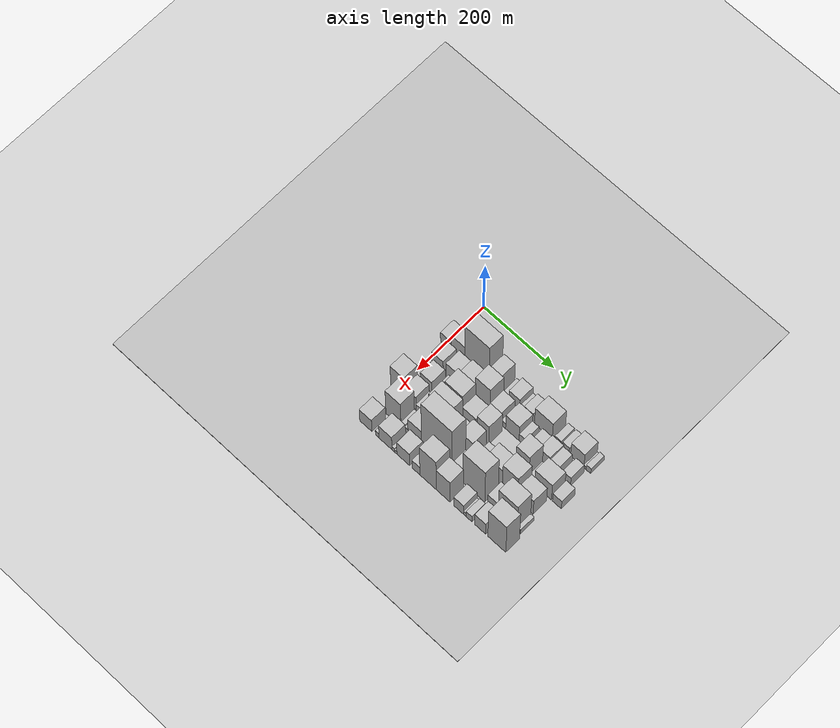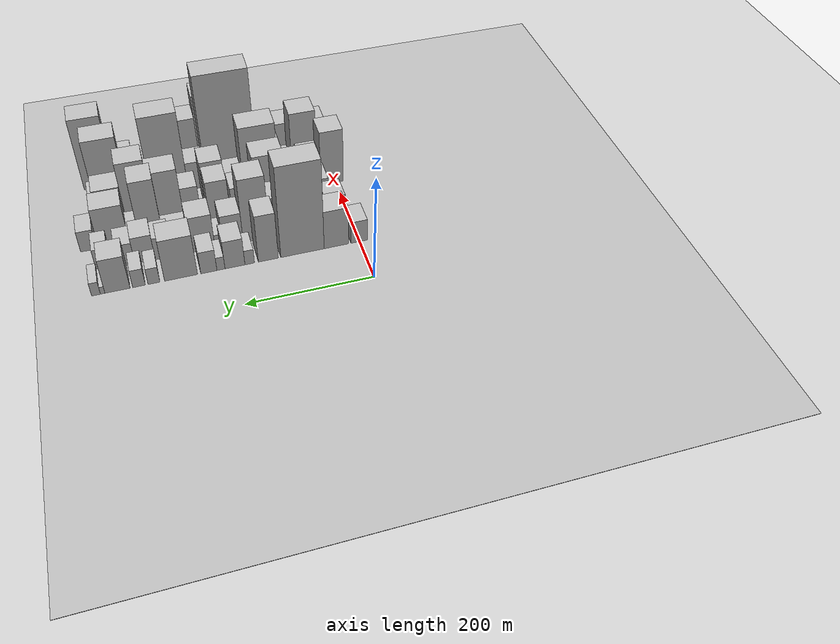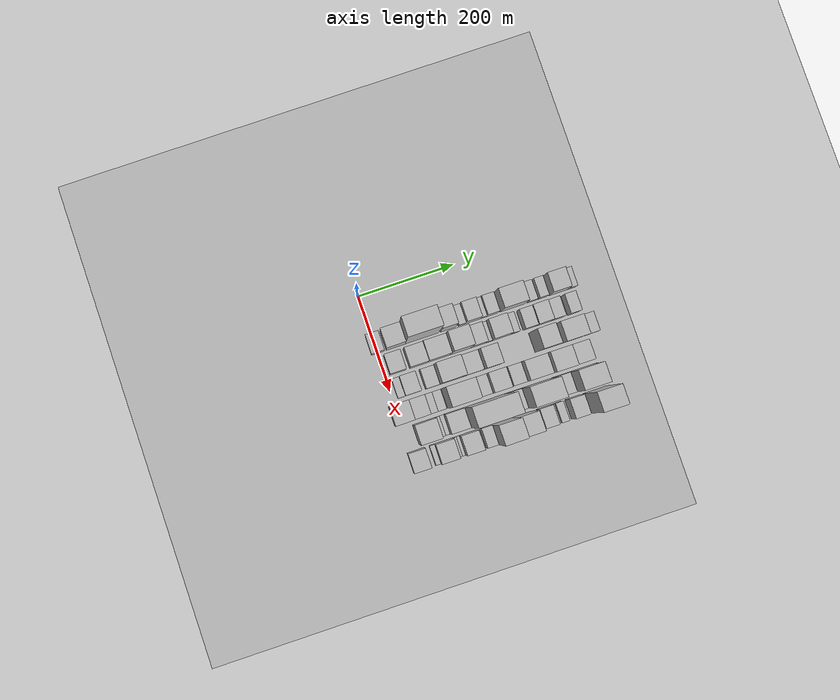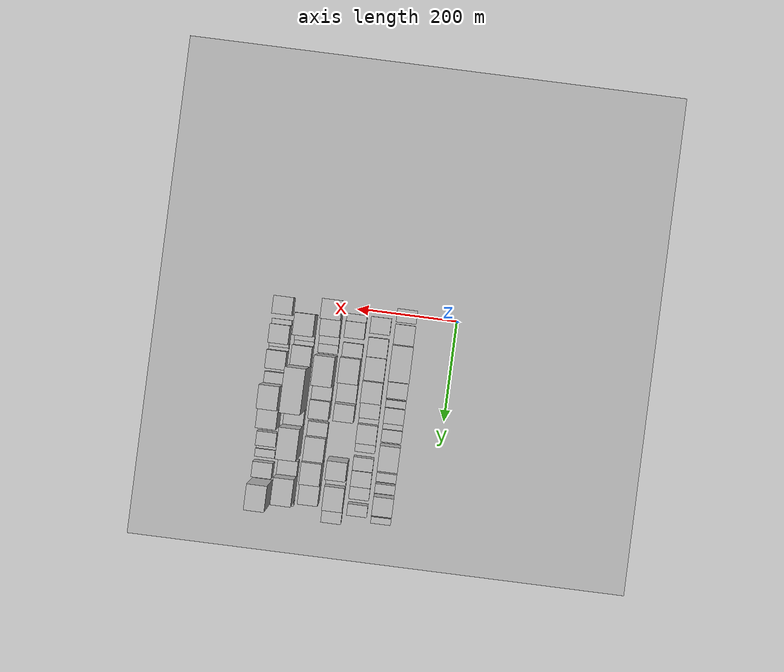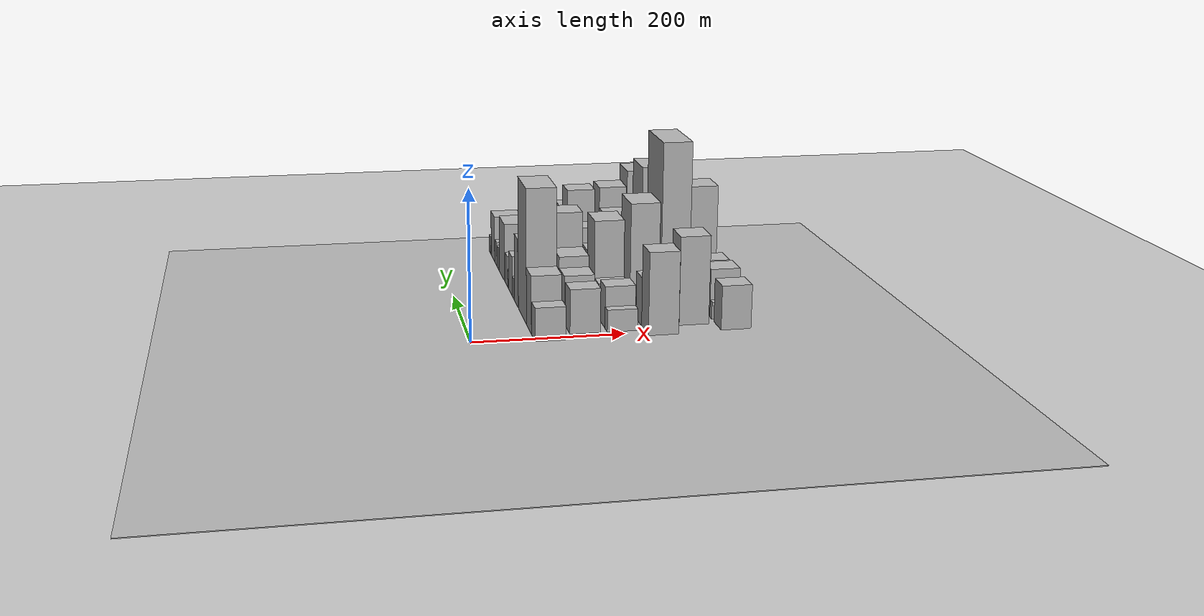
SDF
<sdf version="1.6">
 <world name="default">
  <include><name>ground_plane_1</name><uri>model://HANNAS_ground_plane</uri></include>
  <include>
   <name>ground_plane_2</name>
   <uri>model://HANNAS_ground_plane</uri>
   <pose>100 0 0  0 0 0</pose>
  </include>
  <model name="building_24">
   <static>1</static>
   <pose>100.0000 1.3335 0 0.000000 0.000000 0.000000</pose>
   <link name="link">
    <pose>0 0 22.50 0 0 0</pose>
    <collision name="collision"><geometry><box><size>40.0000 26.7026 45.0000</size></box></geometry></collision>
    <visual name="visual">
     <cast_shadows>0</cast_shadows>
     <geometry><box><size>40.0000 26.7026 45.0000</size></box></geometry>
     <material>
      <script>
       <uri>model://HANNAS_wall/materials/scripts</uri>
       <uri>model://HANNAS_wall/materials/textures</uri>
       <name>vrc/HANNAS_wall</name>
      </script>
     </material>
    </visual>
   </link>
  </model>
  <model name="building_25">
   <static>1</static>
   <pose>100.0000 38.5703 0 0.000000 0.000000 0.000000</pose>
   <link name="link">
    <pose>0 0 39.00 0 0 0</pose>
    <collision name="collision"><geometry><box><size>40.0000 39.7708 78.0000</size></box></geometry></collision>
    <visual name="visual">
     <cast_shadows>0</cast_shadows>
     <geometry><box><size>40.0000 39.7708 78.0000</size></box></geometry>
     <material>
      <script>
       <uri>model://HANNAS_wall/materials/scripts</uri>
       <uri>model://HANNAS_wall/materials/textures</uri>
       <name>vrc/HANNAS_wall</name>
      </script>
     </material>
    </visual>
   </link>
  </model>
  <model name="building_26">
   <static>1</static>
   <pose>100.0000 93.1584 0 0.000000 0.000000 0.000000</pose>
   <link name="link">
    <pose>0 0 91.50 0 0 0</pose>
    <collision name="collision"><geometry><box><size>40.0000 69.4055 183.0000</size></box></geometry></collision>
    <visual name="visual">
     <cast_shadows>0</cast_shadows>
     <geometry><box><size>40.0000 69.4055 183.0000</size></box></geometry>
     <material>
      <script>
       <uri>model://HANNAS_wall/materials/scripts</uri>
       <uri>model://HANNAS_wall/materials/textures</uri>
       <name>vrc/HANNAS_wall</name>
      </script>
     </material>
    </visual>
   </link>
  </model>
  <model name="building_27">
   <static>1</static>
   <pose>100.0000 147.6372 0 0.000000 0.000000 0.000000</pose>
   <link name="link">
    <pose>0 0 48.00 0 0 0</pose>
    <collision name="collision"><geometry><box><size>40.0000 31.5521 96.0000</size></box></geometry></collision>
    <visual name="visual">
     <cast_shadows>0</cast_shadows>
     <geometry><box><size>40.0000 31.5521 96.0000</size></box></geometry>
     <material>
      <script>
       <uri>model://HANNAS_wall/materials/scripts</uri>
       <uri>model://HANNAS_wall/materials/textures</uri>
       <name>vrc/HANNAS_wall</name>
      </script>
     </material>
    </visual>
   </link>
  </model>
  <model name="building_28">
   <static>1</static>
   <pose>100.0000 176.9295 0 0.000000 0.000000 0.000000</pose>
   <link name="link">
    <pose>0 0 15.00 0 0 0</pose>
    <collision name="collision"><geometry><box><size>40.0000 15.0325 30.0000</size></box></geometry></collision>
    <visual name="visual">
     <cast_shadows>0</cast_shadows>
     <geometry><box><size>40.0000 15.0325 30.0000</size></box></geometry>
     <material>
      <script>
       <uri>model://HANNAS_wall/materials/scripts</uri>
       <uri>model://HANNAS_wall/materials/textures</uri>
       <name>vrc/HANNAS_wall</name>
      </script>
     </material>
    </visual>
   </link>
  </model>
  <model name="building_29">
   <static>1</static>
   <pose>100.0000 199.9222 0 0.000000 0.000000 0.000000</pose>
   <link name="link">
    <pose>0 0 28.50 0 0 0</pose>
    <collision name="collision"><geometry><box><size>40.0000 30.9528 57.0000</size></box></geometry></collision>
    <visual name="visual">
     <cast_shadows>0</cast_shadows>
     <geometry><box><size>40.0000 30.9528 57.0000</size></box></geometry>
     <material>
      <script>
       <uri>model://HANNAS_wall/materials/scripts</uri>
       <uri>model://HANNAS_wall/materials/textures</uri>
       <name>vrc/HANNAS_wall</name>
      </script>
     </material>
    </visual>
   </link>
  </model>
  <model name="building_30">
   <static>1</static>
   <pose>100.0000 221.6802 0 0.000000 0.000000 0.000000</pose>
   <link name="link">
    <pose>0 0 13.50 0 0 0</pose>
    <collision name="collision"><geometry><box><size>40.0000 12.5633 27.0000</size></box></geometry></collision>
    <visual name="visual">
     <cast_shadows>0</cast_shadows>
     <geometry><box><size>40.0000 12.5633 27.0000</size></box></geometry>
     <material>
      <script>
       <uri>model://HANNAS_wall/materials/scripts</uri>
       <uri>model://HANNAS_wall/materials/textures</uri>
       <name>vrc/HANNAS_wall</name>
      </script>
     </material>
    </visual>
   </link>
  </model>
  <model name="building_31">
   <static>1</static>
   <pose>100.0000 240.3744 0 0.000000 0.000000 0.000000</pose>
   <link name="link">
    <pose>0 0 22.50 0 0 0</pose>
    <collision name="collision"><geometry><box><size>40.0000 24.8252 45.0000</size></box></geometry></collision>
    <visual name="visual">
     <cast_shadows>0</cast_shadows>
     <geometry><box><size>40.0000 24.8252 45.0000</size></box></geometry>
     <material>
      <script>
       <uri>model://HANNAS_wall/materials/scripts</uri>
       <uri>model://HANNAS_wall/materials/textures</uri>
       <name>vrc/HANNAS_wall</name>
      </script>
     </material>
    </visual>
   </link>
  </model>
  <model name="building_32">
   <static>1</static>
   <pose>100.0000 282.8992 0 0.000000 0.000000 0.000000</pose>
   <link name="link">
    <pose>0 0 42.00 0 0 0</pose>
    <collision name="collision"><geometry><box><size>40.0000 50.2242 84.0000</size></box></geometry></collision>
    <visual name="visual">
     <cast_shadows>0</cast_shadows>
     <geometry><box><size>40.0000 50.2242 84.0000</size></box></geometry>
     <material>
      <script>
       <uri>model://HANNAS_wall/materials/scripts</uri>
       <uri>model://HANNAS_wall/materials/textures</uri>
       <name>vrc/HANNAS_wall</name>
      </script>
     </material>
    </visual>
   </link>
  </model>
  <model name="building_33">
   <static>1</static>
   <pose>100.0000 323.9322 0 0.000000 0.000000 0.000000</pose>
   <link name="link">
    <pose>0 0 16.50 0 0 0</pose>
    <collision name="collision"><geometry><box><size>40.0000 17.8419 33.0000</size></box></geometry></collision>
    <visual name="visual">
     <cast_shadows>0</cast_shadows>
     <geometry><box><size>40.0000 17.8419 33.0000</size></box></geometry>
     <material>
      <script>
       <uri>model://HANNAS_wall/materials/scripts</uri>
       <uri>model://HANNAS_wall/materials/textures</uri>
       <name>vrc/HANNAS_wall</name>
      </script>
     </material>
    </visual>
   </link>
  </model>
  <model name="building_34">
   <static>1</static>
   <pose>100.0000 346.2792 0 0.000000 0.000000 0.000000</pose>
   <link name="link">
    <pose>0 0 18.00 0 0 0</pose>
    <collision name="collision"><geometry><box><size>40.0000 18.8521 36.0000</size></box></geometry></collision>
    <visual name="visual">
     <cast_shadows>0</cast_shadows>
     <geometry><box><size>40.0000 18.8521 36.0000</size></box></geometry>
     <material>
      <script>
       <uri>model://HANNAS_wall/materials/scripts</uri>
       <uri>model://HANNAS_wall/materials/textures</uri>
       <name>vrc/HANNAS_wall</name>
      </script>
     </material>
    </visual>
   </link>
  </model>
  <model name="building_35">
   <static>1</static>
   <pose>100.0000 378.3489 0 0.000000 0.000000 0.000000</pose>
   <link name="link">
    <pose>0 0 34.50 0 0 0</pose>
    <collision name="collision"><geometry><box><size>40.0000 37.2872 69.0000</size></box></geometry></collision>
    <visual name="visual">
     <cast_shadows>0</cast_shadows>
     <geometry><box><size>40.0000 37.2872 69.0000</size></box></geometry>
     <material>
      <script>
       <uri>model://HANNAS_wall/materials/scripts</uri>
       <uri>model://HANNAS_wall/materials/textures</uri>
       <name>vrc/HANNAS_wall</name>
      </script>
     </material>
    </visual>
   </link>
  </model>
  <model name="building_36">
   <static>1</static>
   <pose>100.0000 400.3364 0 0.000000 0.000000 0.000000</pose>
   <link name="link">
    <pose>0 0 7.50 0 0 0</pose>
    <collision name="collision"><geometry><box><size>40.0000 6.6877 15.0000</size></box></geometry></collision>
    <visual name="visual">
     <cast_shadows>0</cast_shadows>
     <geometry><box><size>40.0000 6.6877 15.0000</size></box></geometry>
     <material>
      <script>
       <uri>model://HANNAS_wall/materials/scripts</uri>
       <uri>model://HANNAS_wall/materials/textures</uri>
       <name>vrc/HANNAS_wall</name>
      </script>
     </material>
    </visual>
   </link>
  </model>
  <model name="building_37">
   <static>1</static>
   <pose>100.0000 410.1484 0 0.000000 0.000000 0.000000</pose>
   <link name="link">
    <pose>0 0 13.50 0 0 0</pose>
    <collision name="collision"><geometry><box><size>40.0000 12.9362 27.0000</size></box></geometry></collision>
    <visual name="visual">
     <cast_shadows>0</cast_shadows>
     <geometry><box><size>40.0000 12.9362 27.0000</size></box></geometry>
     <material>
      <script>
       <uri>model://HANNAS_wall/materials/scripts</uri>
       <uri>model://HANNAS_wall/materials/textures</uri>
       <name>vrc/HANNAS_wall</name>
      </script>
     </material>
    </visual>
   </link>
  </model>
  <model name="building_75">
   <static>1</static>
   <pose>149.0000 26.4503 0 0.000000 0.000000 0.000000</pose>
   <link name="link">
    <pose>0 0 30.00 0 0 0</pose>
    <collision name="collision"><geometry><box><size>40.0000 33.0253 60.0000</size></box></geometry></collision>
    <visual name="visual">
     <cast_shadows>0</cast_shadows>
     <geometry><box><size>40.0000 33.0253 60.0000</size></box></geometry>
     <material>
      <script>
       <uri>model://HANNAS_wall/materials/scripts</uri>
       <uri>model://HANNAS_wall/materials/textures</uri>
       <name>vrc/HANNAS_wall</name>
      </script>
     </material>
    </visual>
   </link>
  </model>
  <model name="building_76">
   <static>1</static>
   <pose>149.0000 70.1136 0 0.000000 0.000000 0.000000</pose>
   <link name="link">
    <pose>0 0 33.00 0 0 0</pose>
    <collision name="collision"><geometry><box><size>40.0000 38.3013 66.0000</size></box></geometry></collision>
    <visual name="visual">
     <cast_shadows>0</cast_shadows>
     <geometry><box><size>40.0000 38.3013 66.0000</size></box></geometry>
     <material>
      <script>
       <uri>model://HANNAS_wall/materials/scripts</uri>
       <uri>model://HANNAS_wall/materials/textures</uri>
       <name>vrc/HANNAS_wall</name>
      </script>
     </material>
    </visual>
   </link>
  </model>
  <model name="building_77">
   <static>1</static>
   <pose>149.0000 112.2578 0 0.000000 0.000000 0.000000</pose>
   <link name="link">
    <pose>0 0 40.50 0 0 0</pose>
    <collision name="collision"><geometry><box><size>40.0000 45.9873 81.0000</size></box></geometry></collision>
    <visual name="visual">
     <cast_shadows>0</cast_shadows>
     <geometry><box><size>40.0000 45.9873 81.0000</size></box></geometry>
     <material>
      <script>
       <uri>model://HANNAS_wall/materials/scripts</uri>
       <uri>model://HANNAS_wall/materials/textures</uri>
       <name>vrc/HANNAS_wall</name>
      </script>
     </material>
    </visual>
   </link>
  </model>
  <model name="building_78">
   <static>1</static>
   <pose>149.0000 156.3219 0 0.000000 0.000000 0.000000</pose>
   <link name="link">
    <pose>0 0 64.50 0 0 0</pose>
    <collision name="collision"><geometry><box><size>40.0000 42.1408 129.0000</size></box></geometry></collision>
    <visual name="visual">
     <cast_shadows>0</cast_shadows>
     <geometry><box><size>40.0000 42.1408 129.0000</size></box></geometry>
     <material>
      <script>
       <uri>model://HANNAS_wall/materials/scripts</uri>
       <uri>model://HANNAS_wall/materials/textures</uri>
       <name>vrc/HANNAS_wall</name>
      </script>
     </material>
    </visual>
   </link>
  </model>
  <model name="building_79">
   <static>1</static>
   <pose>149.0000 193.7356 0 0.000000 0.000000 0.000000</pose>
   <link name="link">
    <pose>0 0 31.50 0 0 0</pose>
    <collision name="collision"><geometry><box><size>40.0000 32.6867 63.0000</size></box></geometry></collision>
    <visual name="visual">
     <cast_shadows>0</cast_shadows>
     <geometry><box><size>40.0000 32.6867 63.0000</size></box></geometry>
     <material>
      <script>
       <uri>model://HANNAS_wall/materials/scripts</uri>
       <uri>model://HANNAS_wall/materials/textures</uri>
       <name>vrc/HANNAS_wall</name>
      </script>
     </material>
    </visual>
   </link>
  </model>
  <model name="building_80">
   <static>1</static>
   <pose>149.0000 216.1373 0 0.000000 0.000000 0.000000</pose>
   <link name="link">
    <pose>0 0 13.50 0 0 0</pose>
    <collision name="collision"><geometry><box><size>40.0000 12.1167 27.0000</size></box></geometry></collision>
    <visual name="visual">
     <cast_shadows>0</cast_shadows>
     <geometry><box><size>40.0000 12.1167 27.0000</size></box></geometry>
     <material>
      <script>
       <uri>model://HANNAS_wall/materials/scripts</uri>
       <uri>model://HANNAS_wall/materials/textures</uri>
       <name>vrc/HANNAS_wall</name>
      </script>
     </material>
    </visual>
   </link>
  </model>
  <model name="building_81">
   <static>1</static>
   <pose>149.0000 241.2491 0 0.000000 0.000000 0.000000</pose>
   <link name="link">
    <pose>0 0 36.00 0 0 0</pose>
    <collision name="collision"><geometry><box><size>40.0000 38.1069 72.0000</size></box></geometry></collision>
    <visual name="visual">
     <cast_shadows>0</cast_shadows>
     <geometry><box><size>40.0000 38.1069 72.0000</size></box></geometry>
     <material>
      <script>
       <uri>model://HANNAS_wall/materials/scripts</uri>
       <uri>model://HANNAS_wall/materials/textures</uri>
       <name>vrc/HANNAS_wall</name>
      </script>
     </material>
    </visual>
   </link>
  </model>
  <model name="building_82">
   <static>1</static>
   <pose>149.0000 269.5685 0 0.000000 0.000000 0.000000</pose>
   <link name="link">
    <pose>0 0 18.00 0 0 0</pose>
    <collision name="collision"><geometry><box><size>40.0000 18.5320 36.0000</size></box></geometry></collision>
    <visual name="visual">
     <cast_shadows>0</cast_shadows>
     <geometry><box><size>40.0000 18.5320 36.0000</size></box></geometry>
     <material>
      <script>
       <uri>model://HANNAS_wall/materials/scripts</uri>
       <uri>model://HANNAS_wall/materials/textures</uri>
       <name>vrc/HANNAS_wall</name>
      </script>
     </material>
    </visual>
   </link>
  </model>
  <model name="building_83">
   <static>1</static>
   <pose>149.0000 302.2657 0 0.000000 0.000000 0.000000</pose>
   <link name="link">
    <pose>0 0 22.50 0 0 0</pose>
    <collision name="collision"><geometry><box><size>40.0000 26.8623 45.0000</size></box></geometry></collision>
    <visual name="visual">
     <cast_shadows>0</cast_shadows>
     <geometry><box><size>40.0000 26.8623 45.0000</size></box></geometry>
     <material>
      <script>
       <uri>model://HANNAS_wall/materials/scripts</uri>
       <uri>model://HANNAS_wall/materials/textures</uri>
       <name>vrc/HANNAS_wall</name>
      </script>
     </material>
    </visual>
   </link>
  </model>
  <model name="building_84">
   <static>1</static>
   <pose>149.0000 331.2976 0 0.000000 0.000000 0.000000</pose>
   <link name="link">
    <pose>0 0 27.00 0 0 0</pose>
    <collision name="collision"><geometry><box><size>40.0000 31.2016 54.0000</size></box></geometry></collision>
    <visual name="visual">
     <cast_shadows>0</cast_shadows>
     <geometry><box><size>40.0000 31.2016 54.0000</size></box></geometry>
     <material>
      <script>
       <uri>model://HANNAS_wall/materials/scripts</uri>
       <uri>model://HANNAS_wall/materials/textures</uri>
       <name>vrc/HANNAS_wall</name>
      </script>
     </material>
    </visual>
   </link>
  </model>
  <model name="building_85">
   <static>1</static>
   <pose>149.0000 359.5746 0 0.000000 0.000000 0.000000</pose>
   <link name="link">
    <pose>0 0 22.50 0 0 0</pose>
    <collision name="collision"><geometry><box><size>40.0000 25.3524 45.0000</size></box></geometry></collision>
    <visual name="visual">
     <cast_shadows>0</cast_shadows>
     <geometry><box><size>40.0000 25.3524 45.0000</size></box></geometry>
     <material>
      <script>
       <uri>model://HANNAS_wall/materials/scripts</uri>
       <uri>model://HANNAS_wall/materials/textures</uri>
       <name>vrc/HANNAS_wall</name>
      </script>
     </material>
    </visual>
   </link>
  </model>
  <model name="building_86">
   <static>1</static>
   <pose>149.0000 393.7739 0 0.000000 0.000000 0.000000</pose>
   <link name="link">
    <pose>0 0 22.50 0 0 0</pose>
    <collision name="collision"><geometry><box><size>40.0000 23.0461 45.0000</size></box></geometry></collision>
    <visual name="visual">
     <cast_shadows>0</cast_shadows>
     <geometry><box><size>40.0000 23.0461 45.0000</size></box></geometry>
     <material>
      <script>
       <uri>model://HANNAS_wall/materials/scripts</uri>
       <uri>model://HANNAS_wall/materials/textures</uri>
       <name>vrc/HANNAS_wall</name>
      </script>
     </material>
    </visual>
   </link>
  </model>
  <model name="building_122">
   <static>1</static>
   <pose>198.0000 17.3916 0 0.000000 0.000000 0.000000</pose>
   <link name="link">
    <pose>0 0 15.00 0 0 0</pose>
    <collision name="collision"><geometry><box><size>40.0000 15.0280 30.0000</size></box></geometry></collision>
    <visual name="visual">
     <cast_shadows>0</cast_shadows>
     <geometry><box><size>40.0000 15.0280 30.0000</size></box></geometry>
     <material>
      <script>
       <uri>model://HANNAS_wall/materials/scripts</uri>
       <uri>model://HANNAS_wall/materials/textures</uri>
       <name>vrc/HANNAS_wall</name>
      </script>
     </material>
    </visual>
   </link>
  </model>
  <model name="building_123">
   <static>1</static>
   <pose>198.0000 41.2005 0 0.000000 0.000000 0.000000</pose>
   <link name="link">
    <pose>0 0 28.50 0 0 0</pose>
    <collision name="collision"><geometry><box><size>40.0000 32.5899 57.0000</size></box></geometry></collision>
    <visual name="visual">
     <cast_shadows>0</cast_shadows>
     <geometry><box><size>40.0000 32.5899 57.0000</size></box></geometry>
     <material>
      <script>
       <uri>model://HANNAS_wall/materials/scripts</uri>
       <uri>model://HANNAS_wall/materials/textures</uri>
       <name>vrc/HANNAS_wall</name>
      </script>
     </material>
    </visual>
   </link>
  </model>
  <model name="building_124">
   <static>1</static>
   <pose>198.0000 81.4706 0 0.000000 0.000000 0.000000</pose>
   <link name="link">
    <pose>0 0 24.00 0 0 0</pose>
    <collision name="collision"><geometry><box><size>40.0000 27.9503 48.0000</size></box></geometry></collision>
    <visual name="visual">
     <cast_shadows>0</cast_shadows>
     <geometry><box><size>40.0000 27.9503 48.0000</size></box></geometry>
     <material>
      <script>
       <uri>model://HANNAS_wall/materials/scripts</uri>
       <uri>model://HANNAS_wall/materials/textures</uri>
       <name>vrc/HANNAS_wall</name>
      </script>
     </material>
    </visual>
   </link>
  </model>
  <model name="building_125">
   <static>1</static>
   <pose>198.0000 120.3034 0 0.000000 0.000000 0.000000</pose>
   <link name="link">
    <pose>0 0 63.00 0 0 0</pose>
    <collision name="collision"><geometry><box><size>40.0000 49.7155 126.0000</size></box></geometry></collision>
    <visual name="visual">
     <cast_shadows>0</cast_shadows>
     <geometry><box><size>40.0000 49.7155 126.0000</size></box></geometry>
     <material>
      <script>
       <uri>model://HANNAS_wall/materials/scripts</uri>
       <uri>model://HANNAS_wall/materials/textures</uri>
       <name>vrc/HANNAS_wall</name>
      </script>
     </material>
    </visual>
   </link>
  </model>
  <model name="building_126">
   <static>1</static>
   <pose>198.0000 164.5436 0 0.000000 0.000000 0.000000</pose>
   <link name="link">
    <pose>0 0 36.00 0 0 0</pose>
    <collision name="collision"><geometry><box><size>40.0000 38.7648 72.0000</size></box></geometry></collision>
    <visual name="visual">
     <cast_shadows>0</cast_shadows>
     <geometry><box><size>40.0000 38.7648 72.0000</size></box></geometry>
     <material>
      <script>
       <uri>model://HANNAS_wall/materials/scripts</uri>
       <uri>model://HANNAS_wall/materials/textures</uri>
       <name>vrc/HANNAS_wall</name>
      </script>
     </material>
    </visual>
   </link>
  </model>
  <model name="building_127">
   <static>1</static>
   <pose>198.0000 204.0737 0 0.000000 0.000000 0.000000</pose>
   <link name="link">
    <pose>0 0 46.50 0 0 0</pose>
    <collision name="collision"><geometry><box><size>40.0000 34.2956 93.0000</size></box></geometry></collision>
    <visual name="visual">
     <cast_shadows>0</cast_shadows>
     <geometry><box><size>40.0000 34.2956 93.0000</size></box></geometry>
     <material>
      <script>
       <uri>model://HANNAS_wall/materials/scripts</uri>
       <uri>model://HANNAS_wall/materials/textures</uri>
       <name>vrc/HANNAS_wall</name>
      </script>
     </material>
    </visual>
   </link>
  </model>
  <model name="building_128">
   <static>1</static>
   <pose>198.0000 315.6531 0 0.000000 0.000000 0.000000</pose>
   <link name="link">
    <pose>0 0 60.00 0 0 0</pose>
    <collision name="collision"><geometry><box><size>40.0000 36.9544 120.0000</size></box></geometry></collision>
    <visual name="visual">
     <cast_shadows>0</cast_shadows>
     <geometry><box><size>40.0000 36.9544 120.0000</size></box></geometry>
     <material>
      <script>
       <uri>model://HANNAS_wall/materials/scripts</uri>
       <uri>model://HANNAS_wall/materials/textures</uri>
       <name>vrc/HANNAS_wall</name>
      </script>
     </material>
    </visual>
   </link>
  </model>
  <model name="building_129">
   <static>1</static>
   <pose>198.0000 342.2000 0 0.000000 0.000000 0.000000</pose>
   <link name="link">
    <pose>0 0 15.00 0 0 0</pose>
    <collision name="collision"><geometry><box><size>40.0000 16.1392 30.0000</size></box></geometry></collision>
    <visual name="visual">
     <cast_shadows>0</cast_shadows>
     <geometry><box><size>40.0000 16.1392 30.0000</size></box></geometry>
     <material>
      <script>
       <uri>model://HANNAS_wall/materials/scripts</uri>
       <uri>model://HANNAS_wall/materials/textures</uri>
       <name>vrc/HANNAS_wall</name>
      </script>
     </material>
    </visual>
   </link>
  </model>
  <model name="building_130">
   <static>1</static>
   <pose>198.0000 374.1480 0 0.000000 0.000000 0.000000</pose>
   <link name="link">
    <pose>0 0 40.50 0 0 0</pose>
    <collision name="collision"><geometry><box><size>40.0000 47.7570 81.0000</size></box></geometry></collision>
    <visual name="visual">
     <cast_shadows>0</cast_shadows>
     <geometry><box><size>40.0000 47.7570 81.0000</size></box></geometry>
     <material>
      <script>
       <uri>model://HANNAS_wall/materials/scripts</uri>
       <uri>model://HANNAS_wall/materials/textures</uri>
       <name>vrc/HANNAS_wall</name>
      </script>
     </material>
    </visual>
   </link>
  </model>
  <model name="building_131">
   <static>1</static>
   <pose>198.0000 413.3318 0 0.000000 0.000000 0.000000</pose>
   <link name="link">
    <pose>0 0 21.00 0 0 0</pose>
    <collision name="collision"><geometry><box><size>40.0000 24.6105 42.0000</size></box></geometry></collision>
    <visual name="visual">
     <cast_shadows>0</cast_shadows>
     <geometry><box><size>40.0000 24.6105 42.0000</size></box></geometry>
     <material>
      <script>
       <uri>model://HANNAS_wall/materials/scripts</uri>
       <uri>model://HANNAS_wall/materials/textures</uri>
       <name>vrc/HANNAS_wall</name>
      </script>
     </material>
    </visual>
   </link>
  </model>
  <model name="building_167">
   <static>1</static>
   <pose>247.0000 6.4668 0 0.000000 0.000000 0.000000</pose>
   <link name="link">
    <pose>0 0 55.50 0 0 0</pose>
    <collision name="collision"><geometry><box><size>40.0000 39.2133 111.0000</size></box></geometry></collision>
    <visual name="visual">
     <cast_shadows>0</cast_shadows>
     <geometry><box><size>40.0000 39.2133 111.0000</size></box></geometry>
     <material>
      <script>
       <uri>model://HANNAS_wall/materials/scripts</uri>
       <uri>model://HANNAS_wall/materials/textures</uri>
       <name>vrc/HANNAS_wall</name>
      </script>
     </material>
    </visual>
   </link>
  </model>
  <model name="building_168">
   <static>1</static>
   <pose>247.0000 42.9105 0 0.000000 0.000000 0.000000</pose>
   <link name="link">
    <pose>0 0 33.00 0 0 0</pose>
    <collision name="collision"><geometry><box><size>40.0000 33.6740 66.0000</size></box></geometry></collision>
    <visual name="visual">
     <cast_shadows>0</cast_shadows>
     <geometry><box><size>40.0000 33.6740 66.0000</size></box></geometry>
     <material>
      <script>
       <uri>model://HANNAS_wall/materials/scripts</uri>
       <uri>model://HANNAS_wall/materials/textures</uri>
       <name>vrc/HANNAS_wall</name>
      </script>
     </material>
    </visual>
   </link>
  </model>
  <model name="building_169">
   <static>1</static>
   <pose>247.0000 68.0102 0 0.000000 0.000000 0.000000</pose>
   <link name="link">
    <pose>0 0 15.00 0 0 0</pose>
    <collision name="collision"><geometry><box><size>40.0000 16.5253 30.0000</size></box></geometry></collision>
    <visual name="visual">
     <cast_shadows>0</cast_shadows>
     <geometry><box><size>40.0000 16.5253 30.0000</size></box></geometry>
     <material>
      <script>
       <uri>model://HANNAS_wall/materials/scripts</uri>
       <uri>model://HANNAS_wall/materials/textures</uri>
       <name>vrc/HANNAS_wall</name>
      </script>
     </material>
    </visual>
   </link>
  </model>
  <model name="building_170">
   <static>1</static>
   <pose>247.0000 85.1015 0 0.000000 0.000000 0.000000</pose>
   <link name="link">
    <pose>0 0 15.00 0 0 0</pose>
    <collision name="collision"><geometry><box><size>40.0000 17.6574 30.0000</size></box></geometry></collision>
    <visual name="visual">
     <cast_shadows>0</cast_shadows>
     <geometry><box><size>40.0000 17.6574 30.0000</size></box></geometry>
     <material>
      <script>
       <uri>model://HANNAS_wall/materials/scripts</uri>
       <uri>model://HANNAS_wall/materials/textures</uri>
       <name>vrc/HANNAS_wall</name>
      </script>
     </material>
    </visual>
   </link>
  </model>
  <model name="building_171">
   <static>1</static>
   <pose>247.0000 126.2422 0 0.000000 0.000000 0.000000</pose>
   <link name="link">
    <pose>0 0 73.50 0 0 0</pose>
    <collision name="collision"><geometry><box><size>40.0000 58.6239 147.0000</size></box></geometry></collision>
    <visual name="visual">
     <cast_shadows>0</cast_shadows>
     <geometry><box><size>40.0000 58.6239 147.0000</size></box></geometry>
     <material>
      <script>
       <uri>model://HANNAS_wall/materials/scripts</uri>
       <uri>model://HANNAS_wall/materials/textures</uri>
       <name>vrc/HANNAS_wall</name>
      </script>
     </material>
    </visual>
   </link>
  </model>
  <model name="building_172">
   <static>1</static>
   <pose>247.0000 170.6405 0 0.000000 0.000000 0.000000</pose>
   <link name="link">
    <pose>0 0 30.00 0 0 0</pose>
    <collision name="collision"><geometry><box><size>40.0000 30.1728 60.0000</size></box></geometry></collision>
    <visual name="visual">
     <cast_shadows>0</cast_shadows>
     <geometry><box><size>40.0000 30.1728 60.0000</size></box></geometry>
     <material>
      <script>
       <uri>model://HANNAS_wall/materials/scripts</uri>
       <uri>model://HANNAS_wall/materials/textures</uri>
       <name>vrc/HANNAS_wall</name>
      </script>
     </material>
    </visual>
   </link>
  </model>
  <model name="building_173">
   <static>1</static>
   <pose>247.0000 203.9501 0 0.000000 0.000000 0.000000</pose>
   <link name="link">
    <pose>0 0 46.50 0 0 0</pose>
    <collision name="collision"><geometry><box><size>40.0000 36.4463 93.0000</size></box></geometry></collision>
    <visual name="visual">
     <cast_shadows>0</cast_shadows>
     <geometry><box><size>40.0000 36.4463 93.0000</size></box></geometry>
     <material>
      <script>
       <uri>model://HANNAS_wall/materials/scripts</uri>
       <uri>model://HANNAS_wall/materials/textures</uri>
       <name>vrc/HANNAS_wall</name>
      </script>
     </material>
    </visual>
   </link>
  </model>
  <model name="building_174">
   <static>1</static>
   <pose>247.0000 244.2747 0 0.000000 0.000000 0.000000</pose>
   <link name="link">
    <pose>0 0 24.00 0 0 0</pose>
    <collision name="collision"><geometry><box><size>40.0000 28.2030 48.0000</size></box></geometry></collision>
    <visual name="visual">
     <cast_shadows>0</cast_shadows>
     <geometry><box><size>40.0000 28.2030 48.0000</size></box></geometry>
     <material>
      <script>
       <uri>model://HANNAS_wall/materials/scripts</uri>
       <uri>model://HANNAS_wall/materials/textures</uri>
       <name>vrc/HANNAS_wall</name>
      </script>
     </material>
    </visual>
   </link>
  </model>
  <model name="building_175">
   <static>1</static>
   <pose>247.0000 282.1351 0 0.000000 0.000000 0.000000</pose>
   <link name="link">
    <pose>0 0 45.00 0 0 0</pose>
    <collision name="collision"><geometry><box><size>40.0000 47.5176 90.0000</size></box></geometry></collision>
    <visual name="visual">
     <cast_shadows>0</cast_shadows>
     <geometry><box><size>40.0000 47.5176 90.0000</size></box></geometry>
     <material>
      <script>
       <uri>model://HANNAS_wall/materials/scripts</uri>
       <uri>model://HANNAS_wall/materials/textures</uri>
       <name>vrc/HANNAS_wall</name>
      </script>
     </material>
    </visual>
   </link>
  </model>
  <model name="building_176">
   <static>1</static>
   <pose>247.0000 327.5939 0 0.000000 0.000000 0.000000</pose>
   <link name="link">
    <pose>0 0 60.00 0 0 0</pose>
    <collision name="collision"><geometry><box><size>40.0000 43.4000 120.0000</size></box></geometry></collision>
    <visual name="visual">
     <cast_shadows>0</cast_shadows>
     <geometry><box><size>40.0000 43.4000 120.0000</size></box></geometry>
     <material>
      <script>
       <uri>model://HANNAS_wall/materials/scripts</uri>
       <uri>model://HANNAS_wall/materials/textures</uri>
       <name>vrc/HANNAS_wall</name>
      </script>
     </material>
    </visual>
   </link>
  </model>
  <model name="building_177">
   <static>1</static>
   <pose>247.0000 370.9488 0 0.000000 0.000000 0.000000</pose>
   <link name="link">
    <pose>0 0 37.50 0 0 0</pose>
    <collision name="collision"><geometry><box><size>40.0000 43.3099 75.0000</size></box></geometry></collision>
    <visual name="visual">
     <cast_shadows>0</cast_shadows>
     <geometry><box><size>40.0000 43.3099 75.0000</size></box></geometry>
     <material>
      <script>
       <uri>model://HANNAS_wall/materials/scripts</uri>
       <uri>model://HANNAS_wall/materials/textures</uri>
       <name>vrc/HANNAS_wall</name>
      </script>
     </material>
    </visual>
   </link>
  </model>
  <model name="building_214">
   <static>1</static>
   <pose>296.0000 42.4451 0 0.000000 0.000000 0.000000</pose>
   <link name="link">
    <pose>0 0 60.00 0 0 0</pose>
    <collision name="collision"><geometry><box><size>40.0000 43.5159 120.0000</size></box></geometry></collision>
    <visual name="visual">
     <cast_shadows>0</cast_shadows>
     <geometry><box><size>40.0000 43.5159 120.0000</size></box></geometry>
     <material>
      <script>
       <uri>model://HANNAS_wall/materials/scripts</uri>
       <uri>model://HANNAS_wall/materials/textures</uri>
       <name>vrc/HANNAS_wall</name>
      </script>
     </material>
    </visual>
   </link>
  </model>
  <model name="building_215">
   <static>1</static>
   <pose>296.0000 69.6717 0 0.000000 0.000000 0.000000</pose>
   <link name="link">
    <pose>0 0 13.50 0 0 0</pose>
    <collision name="collision"><geometry><box><size>40.0000 10.9373 27.0000</size></box></geometry></collision>
    <visual name="visual">
     <cast_shadows>0</cast_shadows>
     <geometry><box><size>40.0000 10.9373 27.0000</size></box></geometry>
     <material>
      <script>
       <uri>model://HANNAS_wall/materials/scripts</uri>
       <uri>model://HANNAS_wall/materials/textures</uri>
       <name>vrc/HANNAS_wall</name>
      </script>
     </material>
    </visual>
   </link>
  </model>
  <model name="building_216">
   <static>1</static>
   <pose>296.0000 79.7805 0 0.000000 0.000000 0.000000</pose>
   <link name="link">
    <pose>0 0 10.50 0 0 0</pose>
    <collision name="collision"><geometry><box><size>40.0000 9.2803 21.0000</size></box></geometry></collision>
    <visual name="visual">
     <cast_shadows>0</cast_shadows>
     <geometry><box><size>40.0000 9.2803 21.0000</size></box></geometry>
     <material>
      <script>
       <uri>model://HANNAS_wall/materials/scripts</uri>
       <uri>model://HANNAS_wall/materials/textures</uri>
       <name>vrc/HANNAS_wall</name>
      </script>
     </material>
    </visual>
   </link>
  </model>
  <model name="building_217">
   <static>1</static>
   <pose>296.0000 103.9903 0 0.000000 0.000000 0.000000</pose>
   <link name="link">
    <pose>0 0 37.50 0 0 0</pose>
    <collision name="collision"><geometry><box><size>40.0000 39.1394 75.0000</size></box></geometry></collision>
    <visual name="visual">
     <cast_shadows>0</cast_shadows>
     <geometry><box><size>40.0000 39.1394 75.0000</size></box></geometry>
     <material>
      <script>
       <uri>model://HANNAS_wall/materials/scripts</uri>
       <uri>model://HANNAS_wall/materials/textures</uri>
       <name>vrc/HANNAS_wall</name>
      </script>
     </material>
    </visual>
   </link>
  </model>
  <model name="building_218">
   <static>1</static>
   <pose>296.0000 167.1606 0 0.000000 0.000000 0.000000</pose>
   <link name="link">
    <pose>0 0 111.00 0 0 0</pose>
    <collision name="collision"><geometry><box><size>40.0000 87.2012 222.0000</size></box></geometry></collision>
    <visual name="visual">
     <cast_shadows>0</cast_shadows>
     <geometry><box><size>40.0000 87.2012 222.0000</size></box></geometry>
     <material>
      <script>
       <uri>model://HANNAS_wall/materials/scripts</uri>
       <uri>model://HANNAS_wall/materials/textures</uri>
       <name>vrc/HANNAS_wall</name>
      </script>
     </material>
    </visual>
   </link>
  </model>
  <model name="building_219">
   <static>1</static>
   <pose>296.0000 226.2130 0 0.000000 0.000000 0.000000</pose>
   <link name="link">
    <pose>0 0 28.50 0 0 0</pose>
    <collision name="collision"><geometry><box><size>40.0000 30.9036 57.0000</size></box></geometry></collision>
    <visual name="visual">
     <cast_shadows>0</cast_shadows>
     <geometry><box><size>40.0000 30.9036 57.0000</size></box></geometry>
     <material>
      <script>
       <uri>model://HANNAS_wall/materials/scripts</uri>
       <uri>model://HANNAS_wall/materials/textures</uri>
       <name>vrc/HANNAS_wall</name>
      </script>
     </material>
    </visual>
   </link>
  </model>
  <model name="building_220">
   <static>1</static>
   <pose>296.0000 272.5023 0 0.000000 0.000000 0.000000</pose>
   <link name="link">
    <pose>0 0 81.00 0 0 0</pose>
    <collision name="collision"><geometry><box><size>40.0000 61.6749 162.0000</size></box></geometry></collision>
    <visual name="visual">
     <cast_shadows>0</cast_shadows>
     <geometry><box><size>40.0000 61.6749 162.0000</size></box></geometry>
     <material>
      <script>
       <uri>model://HANNAS_wall/materials/scripts</uri>
       <uri>model://HANNAS_wall/materials/textures</uri>
       <name>vrc/HANNAS_wall</name>
      </script>
     </material>
    </visual>
   </link>
  </model>
  <model name="building_221">
   <static>1</static>
   <pose>296.0000 326.1795 0 0.000000 0.000000 0.000000</pose>
   <link name="link">
    <pose>0 0 28.50 0 0 0</pose>
    <collision name="collision"><geometry><box><size>40.0000 29.6795 57.0000</size></box></geometry></collision>
    <visual name="visual">
     <cast_shadows>0</cast_shadows>
     <geometry><box><size>40.0000 29.6795 57.0000</size></box></geometry>
     <material>
      <script>
       <uri>model://HANNAS_wall/materials/scripts</uri>
       <uri>model://HANNAS_wall/materials/textures</uri>
       <name>vrc/HANNAS_wall</name>
      </script>
     </material>
    </visual>
   </link>
  </model>
  <model name="building_222">
   <static>1</static>
   <pose>296.0000 367.4746 0 0.000000 0.000000 0.000000</pose>
   <link name="link">
    <pose>0 0 67.50 0 0 0</pose>
    <collision name="collision"><geometry><box><size>40.0000 52.9108 135.0000</size></box></geometry></collision>
    <visual name="visual">
     <cast_shadows>0</cast_shadows>
     <geometry><box><size>40.0000 52.9108 135.0000</size></box></geometry>
     <material>
      <script>
       <uri>model://HANNAS_wall/materials/scripts</uri>
       <uri>model://HANNAS_wall/materials/textures</uri>
       <name>vrc/HANNAS_wall</name>
      </script>
     </material>
    </visual>
   </link>
  </model>
  <model name="building_223">
   <static>1</static>
   <pose>296.0000 398.7929 0 0.000000 0.000000 0.000000</pose>
   <link name="link">
    <pose>0 0 12.00 0 0 0</pose>
    <collision name="collision"><geometry><box><size>40.0000 9.7259 24.0000</size></box></geometry></collision>
    <visual name="visual">
     <cast_shadows>0</cast_shadows>
     <geometry><box><size>40.0000 9.7259 24.0000</size></box></geometry>
     <material>
      <script>
       <uri>model://HANNAS_wall/materials/scripts</uri>
       <uri>model://HANNAS_wall/materials/textures</uri>
       <name>vrc/HANNAS_wall</name>
      </script>
     </material>
    </visual>
   </link>
  </model>
  <model name="building_256">
   <static>1</static>
   <pose>345.0000 10.6253 0 0.000000 0.000000 0.000000</pose>
   <link name="link">
    <pose>0 0 30.00 0 0 0</pose>
    <collision name="collision"><geometry><box><size>40.0000 35.4932 60.0000</size></box></geometry></collision>
    <visual name="visual">
     <cast_shadows>0</cast_shadows>
     <geometry><box><size>40.0000 35.4932 60.0000</size></box></geometry>
     <material>
      <script>
       <uri>model://HANNAS_wall/materials/scripts</uri>
       <uri>model://HANNAS_wall/materials/textures</uri>
       <name>vrc/HANNAS_wall</name>
      </script>
     </material>
    </visual>
   </link>
  </model>
  <model name="building_257">
   <static>1</static>
   <pose>345.0000 43.5332 0 0.000000 0.000000 0.000000</pose>
   <link name="link">
    <pose>0 0 12.00 0 0 0</pose>
    <collision name="collision"><geometry><box><size>40.0000 10.3225 24.0000</size></box></geometry></collision>
    <visual name="visual">
     <cast_shadows>0</cast_shadows>
     <geometry><box><size>40.0000 10.3225 24.0000</size></box></geometry>
     <material>
      <script>
       <uri>model://HANNAS_wall/materials/scripts</uri>
       <uri>model://HANNAS_wall/materials/textures</uri>
       <name>vrc/HANNAS_wall</name>
      </script>
     </material>
    </visual>
   </link>
  </model>
  <model name="building_258">
   <static>1</static>
   <pose>345.0000 67.4498 0 0.000000 0.000000 0.000000</pose>
   <link name="link">
    <pose>0 0 33.00 0 0 0</pose>
    <collision name="collision"><geometry><box><size>40.0000 37.5106 66.0000</size></box></geometry></collision>
    <visual name="visual">
     <cast_shadows>0</cast_shadows>
     <geometry><box><size>40.0000 37.5106 66.0000</size></box></geometry>
     <material>
      <script>
       <uri>model://HANNAS_wall/materials/scripts</uri>
       <uri>model://HANNAS_wall/materials/textures</uri>
       <name>vrc/HANNAS_wall</name>
      </script>
     </material>
    </visual>
   </link>
  </model>
  <model name="building_259">
   <static>1</static>
   <pose>345.0000 89.9380 0 0.000000 0.000000 0.000000</pose>
   <link name="link">
    <pose>0 0 9.00 0 0 0</pose>
    <collision name="collision"><geometry><box><size>40.0000 7.4659 18.0000</size></box></geometry></collision>
    <visual name="visual">
     <cast_shadows>0</cast_shadows>
     <geometry><box><size>40.0000 7.4659 18.0000</size></box></geometry>
     <material>
      <script>
       <uri>model://HANNAS_wall/materials/scripts</uri>
       <uri>model://HANNAS_wall/materials/textures</uri>
       <name>vrc/HANNAS_wall</name>
      </script>
     </material>
    </visual>
   </link>
  </model>
  <model name="building_260">
   <static>1</static>
   <pose>345.0000 96.9525 0 0.000000 0.000000 0.000000</pose>
   <link name="link">
    <pose>0 0 7.50 0 0 0</pose>
    <collision name="collision"><geometry><box><size>40.0000 6.5632 15.0000</size></box></geometry></collision>
    <visual name="visual">
     <cast_shadows>0</cast_shadows>
     <geometry><box><size>40.0000 6.5632 15.0000</size></box></geometry>
     <material>
      <script>
       <uri>model://HANNAS_wall/materials/scripts</uri>
       <uri>model://HANNAS_wall/materials/textures</uri>
       <name>vrc/HANNAS_wall</name>
      </script>
     </material>
    </visual>
   </link>
  </model>
  <model name="building_261">
   <static>1</static>
   <pose>345.0000 118.4834 0 0.000000 0.000000 0.000000</pose>
   <link name="link">
    <pose>0 0 31.50 0 0 0</pose>
    <collision name="collision"><geometry><box><size>40.0000 36.4985 63.0000</size></box></geometry></collision>
    <visual name="visual">
     <cast_shadows>0</cast_shadows>
     <geometry><box><size>40.0000 36.4985 63.0000</size></box></geometry>
     <material>
      <script>
       <uri>model://HANNAS_wall/materials/scripts</uri>
       <uri>model://HANNAS_wall/materials/textures</uri>
       <name>vrc/HANNAS_wall</name>
      </script>
     </material>
    </visual>
   </link>
  </model>
  <model name="building_262">
   <static>1</static>
   <pose>345.0000 154.9302 0 0.000000 0.000000 0.000000</pose>
   <link name="link">
    <pose>0 0 21.00 0 0 0</pose>
    <collision name="collision"><geometry><box><size>40.0000 22.3951 42.0000</size></box></geometry></collision>
    <visual name="visual">
     <cast_shadows>0</cast_shadows>
     <geometry><box><size>40.0000 22.3951 42.0000</size></box></geometry>
     <material>
      <script>
       <uri>model://HANNAS_wall/materials/scripts</uri>
       <uri>model://HANNAS_wall/materials/textures</uri>
       <name>vrc/HANNAS_wall</name>
      </script>
     </material>
    </visual>
   </link>
  </model>
  <model name="building_263">
   <static>1</static>
   <pose>345.0000 189.3960 0 0.000000 0.000000 0.000000</pose>
   <link name="link">
    <pose>0 0 75.00 0 0 0</pose>
    <collision name="collision"><geometry><box><size>40.0000 46.5366 150.0000</size></box></geometry></collision>
    <visual name="visual">
     <cast_shadows>0</cast_shadows>
     <geometry><box><size>40.0000 46.5366 150.0000</size></box></geometry>
     <material>
      <script>
       <uri>model://HANNAS_wall/materials/scripts</uri>
       <uri>model://HANNAS_wall/materials/textures</uri>
       <name>vrc/HANNAS_wall</name>
      </script>
     </material>
    </visual>
   </link>
  </model>
  <model name="building_264">
   <static>1</static>
   <pose>345.0000 232.4867 0 0.000000 0.000000 0.000000</pose>
   <link name="link">
    <pose>0 0 54.00 0 0 0</pose>
    <collision name="collision"><geometry><box><size>40.0000 39.6448 108.0000</size></box></geometry></collision>
    <visual name="visual">
     <cast_shadows>0</cast_shadows>
     <geometry><box><size>40.0000 39.6448 108.0000</size></box></geometry>
     <material>
      <script>
       <uri>model://HANNAS_wall/materials/scripts</uri>
       <uri>model://HANNAS_wall/materials/textures</uri>
       <name>vrc/HANNAS_wall</name>
      </script>
     </material>
    </visual>
   </link>
  </model>
  <model name="building_265">
   <static>1</static>
   <pose>345.0000 276.4505 0 0.000000 0.000000 0.000000</pose>
   <link name="link">
    <pose>0 0 24.00 0 0 0</pose>
    <collision name="collision"><geometry><box><size>40.0000 28.2828 48.0000</size></box></geometry></collision>
    <visual name="visual">
     <cast_shadows>0</cast_shadows>
     <geometry><box><size>40.0000 28.2828 48.0000</size></box></geometry>
     <material>
      <script>
       <uri>model://HANNAS_wall/materials/scripts</uri>
       <uri>model://HANNAS_wall/materials/textures</uri>
       <name>vrc/HANNAS_wall</name>
      </script>
     </material>
    </visual>
   </link>
  </model>
  <model name="building_266">
   <static>1</static>
   <pose>345.0000 294.1964 0 0.000000 0.000000 0.000000</pose>
   <link name="link">
    <pose>0 0 9.00 0 0 0</pose>
    <collision name="collision"><geometry><box><size>40.0000 7.2091 18.0000</size></box></geometry></collision>
    <visual name="visual">
     <cast_shadows>0</cast_shadows>
     <geometry><box><size>40.0000 7.2091 18.0000</size></box></geometry>
     <material>
      <script>
       <uri>model://HANNAS_wall/materials/scripts</uri>
       <uri>model://HANNAS_wall/materials/textures</uri>
       <name>vrc/HANNAS_wall</name>
      </script>
     </material>
    </visual>
   </link>
  </model>
  <model name="building_267">
   <static>1</static>
   <pose>345.0000 305.8378 0 0.000000 0.000000 0.000000</pose>
   <link name="link">
    <pose>0 0 15.00 0 0 0</pose>
    <collision name="collision"><geometry><box><size>40.0000 16.0737 30.0000</size></box></geometry></collision>
    <visual name="visual">
     <cast_shadows>0</cast_shadows>
     <geometry><box><size>40.0000 16.0737 30.0000</size></box></geometry>
     <material>
      <script>
       <uri>model://HANNAS_wall/materials/scripts</uri>
       <uri>model://HANNAS_wall/materials/textures</uri>
       <name>vrc/HANNAS_wall</name>
      </script>
     </material>
    </visual>
   </link>
  </model>
  <model name="building_268">
   <static>1</static>
   <pose>345.0000 337.3226 0 0.000000 0.000000 0.000000</pose>
   <link name="link">
    <pose>0 0 28.50 0 0 0</pose>
    <collision name="collision"><geometry><box><size>40.0000 30.8958 57.0000</size></box></geometry></collision>
    <visual name="visual">
     <cast_shadows>0</cast_shadows>
     <geometry><box><size>40.0000 30.8958 57.0000</size></box></geometry>
     <material>
      <script>
       <uri>model://HANNAS_wall/materials/scripts</uri>
       <uri>model://HANNAS_wall/materials/textures</uri>
       <name>vrc/HANNAS_wall</name>
      </script>
     </material>
    </visual>
   </link>
  </model>
  <model name="building_269">
   <static>1</static>
   <pose>345.0000 383.9894 0 0.000000 0.000000 0.000000</pose>
   <link name="link">
    <pose>0 0 72.00 0 0 0</pose>
    <collision name="collision"><geometry><box><size>40.0000 50.4377 144.0000</size></box></geometry></collision>
    <visual name="visual">
     <cast_shadows>0</cast_shadows>
     <geometry><box><size>40.0000 50.4377 144.0000</size></box></geometry>
     <material>
      <script>
       <uri>model://HANNAS_wall/materials/scripts</uri>
       <uri>model://HANNAS_wall/materials/textures</uri>
       <name>vrc/HANNAS_wall</name>
      </script>
     </material>
    </visual>
   </link>
  </model>
 </world>
</sdf>
